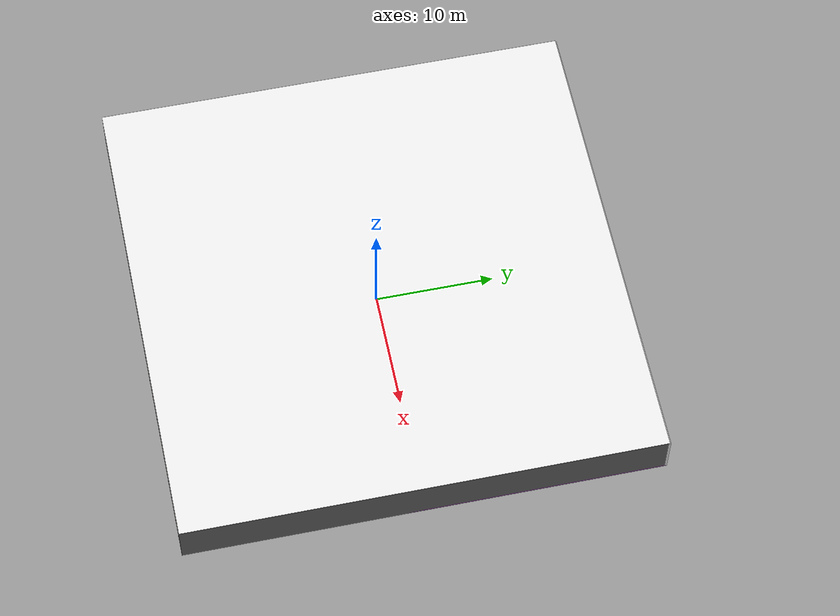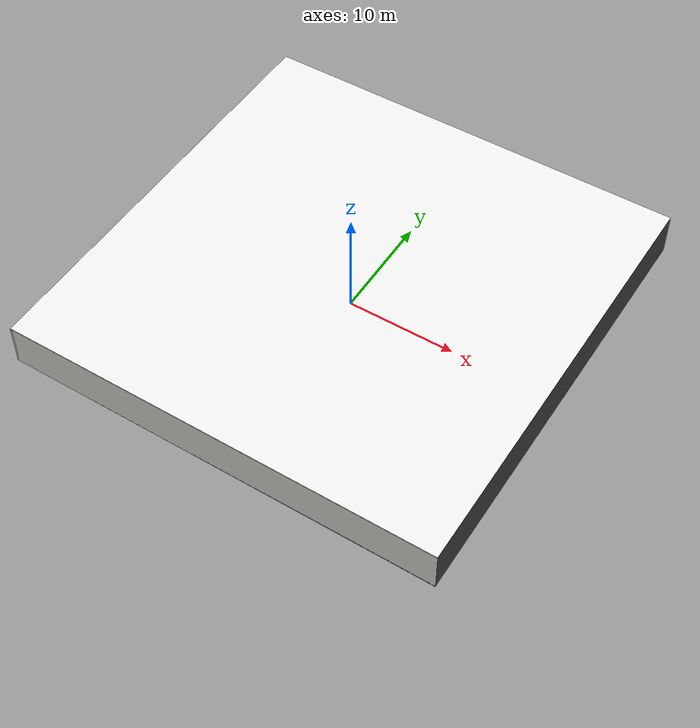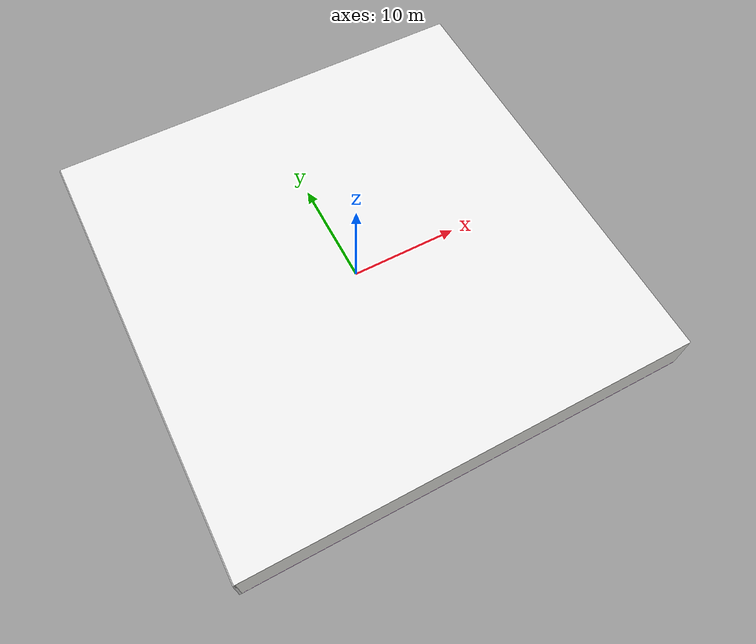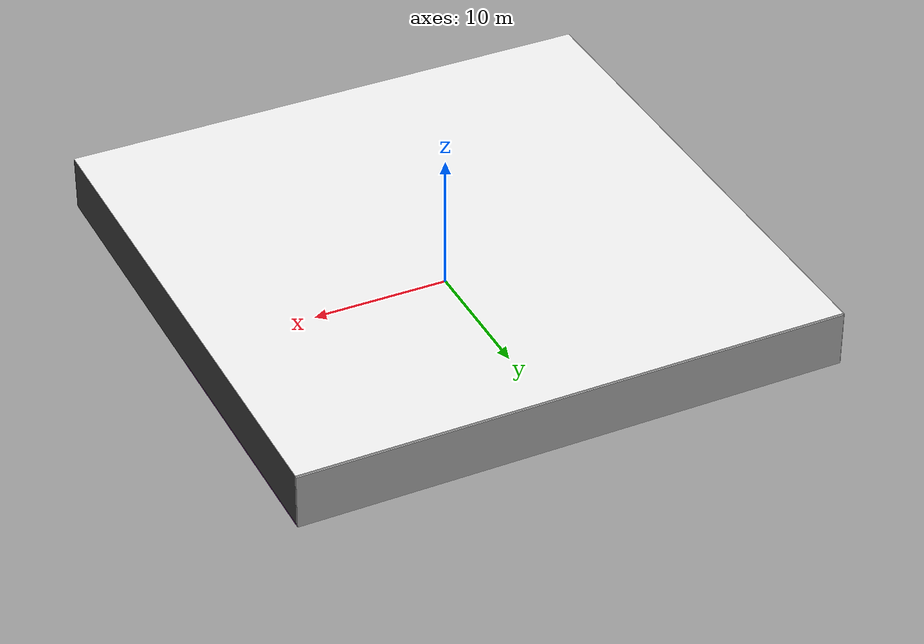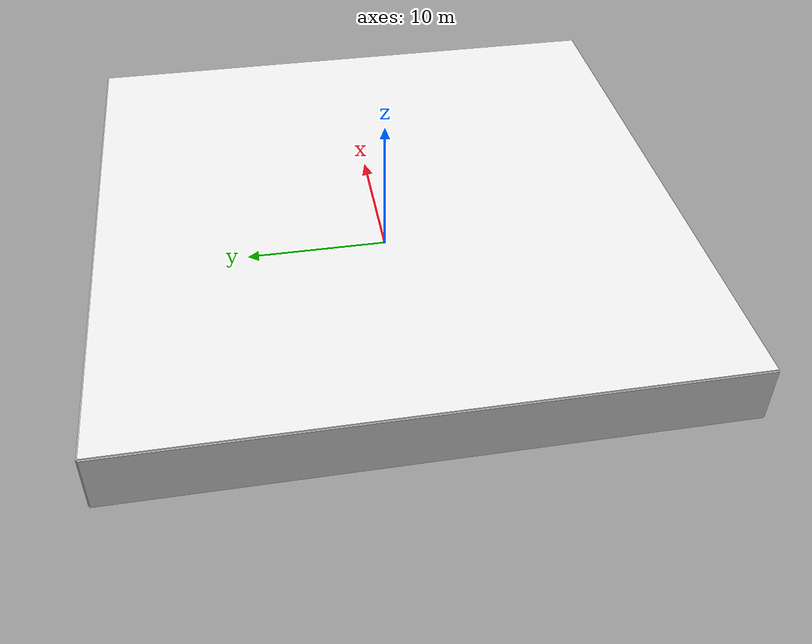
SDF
<sdf version="1.4">
 <world name="default">
  <physics type="ode">
   <max_step_size>0.001</max_step_size>
   <real_time_factor>1</real_time_factor>
   <real_time_update_rate>1000</real_time_update_rate>
   <gravity>0 0 -9.8</gravity>
  </physics>
  <scene><ambient>0.4 0.4 0.4 1</ambient><background>0.7 0.7 0.7 1</background><shadows>1</shadows></scene>
  <model name="Surrounding">
   <static>1</static>
   <link name="Ceiling">
    <collision name="Ceiling_Collision"><geometry><box><size>40 40 0.1</size></box></geometry></collision>
    <visual name="Ceiling_Visual">
     <geometry><box><size>40 40 0.1</size></box></geometry>
     <material>
      <script><uri>file://media/materials/scripts/gazebo.material</uri><name>Gazebo/WhiteGlow</name></script>
     </material>
    </visual>
    <pose>0 0 4.05 0 0 0</pose>
   </link>
   <link name="Wall_South">
    <collision name="Wall_South_Collision">
     <geometry><box><size>40 0 4</size></box></geometry>
     <pose>0 0 2 0 -0 0</pose>
    </collision>
    <visual name="Wall_South_Visual">
     <pose>0 0 2 0 -0 0</pose>
     <geometry><box><size>40 0 4</size></box></geometry>
     <material>
      <script><uri>file://media/materials/scripts/gazebo.material</uri><name>Gazebo/CeilingTiled</name></script>
     </material>
    </visual>
    <velocity_decay><linear>0</linear><angular>0</angular></velocity_decay>
    <pose>0 -20 0 0 -0 0</pose>
   </link>
   <link name="Wall_East">
    <collision name="Wall_21_Collision">
     <geometry><box><size>40 0 4</size></box></geometry>
     <pose>0 0 2 0 -0 0</pose>
    </collision>
    <visual name="Wall_21_Visual">
     <pose>0 0 2 0 -0 0</pose>
     <geometry><box><size>40 0 4</size></box></geometry>
     <material>
      <script><uri>file://media/materials/scripts/gazebo.material</uri><name>Gazebo/DarkGrey</name></script>
     </material>
    </visual>
    <velocity_decay><linear>0</linear><angular>0</angular></velocity_decay>
    <pose>20 0 0 0 -0 1.5708</pose>
   </link>
   <link name="Wall_North">
    <collision name="Wall_22_Collision">
     <geometry><box><size>40 0.2 4</size></box></geometry>
     <pose>0 0 2 0 -0 0</pose>
    </collision>
    <visual name="Wall_22_Visual">
     <pose>0 0 2 0 -0 0</pose>
     <geometry><box><size>40 0.2 4</size></box></geometry>
     <material>
      <script><uri>file://media/materials/scripts/gazebo.material</uri><name>Gazebo/LightOff</name></script>
     </material>
    </visual>
    <velocity_decay><linear>0</linear><angular>0</angular></velocity_decay>
    <pose>0 20 0 0 -0 0</pose>
   </link>
   <link name="Wall_West">
    <collision name="Wall_23_Collision">
     <geometry><box><size>40 0.2 4</size></box></geometry>
     <pose>0 0 2 0 -0 0</pose>
    </collision>
    <visual name="Wall_23_Visual">
     <pose>0 0 2 0 -0 0</pose>
     <geometry><box><size>40 0.2 4</size></box></geometry>
     <material>
      <script><uri>file://media/materials/scripts/gazebo.material</uri><name>Gazebo/Pioneer2Body</name></script>
     </material>
    </visual>
    <velocity_decay><linear>0</linear><angular>0</angular></velocity_decay>
    <pose>-20 0 0 0 0 -1.5708</pose>
   </link>
   <link name="Ground_link">
    <collision name="collision">
     <pose>0 0 .05 0 -0 0</pose>
     <geometry><box><size>40 40 0.1</size></box></geometry>
    </collision>
    <visual name="visual">
     <pose>0 0 .05 0 -0 0</pose>
     <geometry><box><size>40 40 0.1</size></box></geometry>
     <material>
      <script><uri>file://media/materials/scripts/gazebo.material</uri><name>Gazebo/Purple</name></script>
     </material>
    </visual>
   </link>
   <static>1</static>
  </model>
  <spherical_coordinates>
   <surface_model>EARTH_WGS84</surface_model>
   <latitude_deg>0</latitude_deg>
   <longitude_deg>0</longitude_deg>
   <elevation>0</elevation>
   <heading_deg>0</heading_deg>
  </spherical_coordinates>
  <light name="lightball_0" type="diffuse">
   <diffuse>0.8 0.8 0.8 1</diffuse>
   <specular>0.2 0.2 0.2 1</specular>
   <attenuation>
    <range>100</range>
    <constant>0.7</constant>
    <linear>0.01</linear>
    <quadratic>0.001</quadratic>
   </attenuation>
   <direction>-0.5 0.1 -0.9</direction>
   <pose>-0.0728390010791 4.03079209424 3.01176446495 0 0 0</pose>
  </light>
  <light name="lightball_1" type="diffuse">
   <diffuse>0.8 0.8 0.8 1</diffuse>
   <specular>0.2 0.2 0.2 1</specular>
   <attenuation>
    <range>100</range>
    <constant>0.7</constant>
    <linear>0.01</linear>
    <quadratic>0.001</quadratic>
   </attenuation>
   <direction>-0.5 0.1 -0.9</direction>
   <pose>-2.65949309528 16.0484951471 3.80531192896 0 0 0</pose>
  </light>
  <light name="lightball_2" type="diffuse">
   <diffuse>0.8 0.8 0.8 1</diffuse>
   <specular>0.2 0.2 0.2 1</specular>
   <attenuation>
    <range>100</range>
    <constant>0.7</constant>
    <linear>0.01</linear>
    <quadratic>0.001</quadratic>
   </attenuation>
   <direction>-0.5 0.1 -0.9</direction>
   <pose>4.12296359036 -6.80627127556 3.62245246526 0 0 0</pose>
  </light>
  <light name="lightball_3" type="diffuse">
   <diffuse>0.8 0.8 0.8 1</diffuse>
   <specular>0.2 0.2 0.2 1</specular>
   <attenuation>
    <range>100</range>
    <constant>0.7</constant>
    <linear>0.01</linear>
    <quadratic>0.001</quadratic>
   </attenuation>
   <direction>-0.5 0.1 -0.9</direction>
   <pose>-6.74535414608 -14.9375646867 3.5541260201 0 0 0</pose>
  </light>
  <light name="lightball_4" type="diffuse">
   <diffuse>0.8 0.8 0.8 1</diffuse>
   <specular>0.2 0.2 0.2 1</specular>
   <attenuation>
    <range>100</range>
    <constant>0.7</constant>
    <linear>0.01</linear>
    <quadratic>0.001</quadratic>
   </attenuation>
   <direction>-0.5 0.1 -0.9</direction>
   <pose>-4.87693668356 -13.5905343744 0.555469825508 0 0 0</pose>
  </light>
  <light name="lightball_5" type="diffuse">
   <diffuse>0.8 0.8 0.8 1</diffuse>
   <specular>0.2 0.2 0.2 1</specular>
   <attenuation>
    <range>100</range>
    <constant>0.7</constant>
    <linear>0.01</linear>
    <quadratic>0.001</quadratic>
   </attenuation>
   <direction>-0.5 0.1 -0.9</direction>
   <pose>-17.9052917454 -14.2391116782 2.20961750899 0 0 0</pose>
  </light>
  <light name="lightball_6" type="diffuse">
   <diffuse>0.8 0.8 0.8 1</diffuse>
   <specular>0.2 0.2 0.2 1</specular>
   <attenuation>
    <range>100</range>
    <constant>0.7</constant>
    <linear>0.01</linear>
    <quadratic>0.001</quadratic>
   </attenuation>
   <direction>-0.5 0.1 -0.9</direction>
   <pose>-1.92299941602 10.2996992852 3.53634709194 0 0 0</pose>
  </light>
  <light name="lightball_7" type="diffuse">
   <diffuse>0.8 0.8 0.8 1</diffuse>
   <specular>0.2 0.2 0.2 1</specular>
   <attenuation>
    <range>100</range>
    <constant>0.7</constant>
    <linear>0.01</linear>
    <quadratic>0.001</quadratic>
   </attenuation>
   <direction>-0.5 0.1 -0.9</direction>
   <pose>6.38180603838 -7.5609527758 1.25946089238 0 0 0</pose>
  </light>
  <include><uri>model://table</uri><pose>-17.7173008125 9.16021875232 0 0 0 1.31478457458</pose></include>
  <include><uri>model://table</uri><pose>-15.6643053368 1.02209462693 0 0 0 1.38868726124</pose></include>
  <include><uri>model://table</uri><pose>-13.6538499536 15.8198689285 0 0 0 0.0336712577904</pose></include>
  <include><uri>model://table</uri><pose>-11.4262250985 6.57022648048 0 0 0 1.24211671493</pose></include>
  <include><uri>model://table</uri><pose>-9.37145454718 -10.5584758779 0 0 0 3.03336523071</pose></include>
  <include><uri>model://cabinet</uri><pose>-9.40343898693 3.28670108748 0 0 0 2.0025829753</pose></include>
  <include><uri>model://table</uri><pose>-8.10651665901 8.55945028978 0 0 0 1.94630114287</pose></include>
  <include>
   <uri>model://textured_shapes</uri>
   <pose>-4.76028228945 -8.89789976107 0 0 0 2.14350548295</pose>
  </include>
  <include><uri>model://cabinet</uri><pose>-1.67695633151 -2.9927187097 0 0 0 1.00075935257</pose></include>
  <include>
   <uri>model://construction_cone</uri>
   <pose>0.145722951225 9.4463664687 0 0 0 3.07275514891</pose>
  </include>
  <include><uri>model://cabinet</uri><pose>0.869035494877 11.5051935034 0 0 0 2.52728073723</pose></include>
  <include>
   <uri>model://robocup_3Dsim_goal</uri>
   <pose>3.79420262696 14.3229061695 0 0 0 1.55133362047</pose>
  </include>
  <include>
   <uri>model://textured_shapes</uri>
   <pose>5.65608531327 6.75887997472 0 0 0 0.770584171857</pose>
  </include>
  <include>
   <uri>model://textured_shapes</uri>
   <pose>6.14078901119 11.524738135 0 0 0 1.65402796474</pose>
  </include>
  <include>
   <uri>model://construction_cone</uri>
   <pose>8.34347448993 -13.3531434072 0 0 0 2.05464476507</pose>
  </include>
  <include><uri>model://cabinet</uri><pose>8.88997183483 -11.7754179544 0 0 0 0.146248615459</pose></include>
  <include><uri>model://table</uri><pose>9.01337972001 -6.62072628915 0 0 0 3.01319985749</pose></include>
  <include>
   <uri>model://robocup_3Dsim_goal</uri>
   <pose>9.21667194433 -1.73809863183 0 0 0 1.97221803231</pose>
  </include>
  <include><uri>model://cabinet</uri><pose>9.69030317706 0.429107865223 0 0 0 2.6400026895</pose></include>
  <include>
   <uri>model://textured_shapes</uri>
   <pose>16.0466357459 -14.8246231908 0 0 0 2.87990617234</pose>
  </include>
  <include>
   <uri>model://construction_cone</uri>
   <pose>15.7183139168 -10.9133666394 0 0 0 1.9064558693</pose>
  </include>
  <include>
   <uri>model://robocup_3Dsim_goal</uri>
   <pose>14.361907896 7.23631555007 0 0 0 0.939216798785</pose>
  </include>
  <include><uri>model://table</uri><pose>17.5835850908 -8.4066195483 0 0 0 0.681945964592</pose></include>
  <include><uri>model://cabinet</uri><pose>19.6612842489 -4.95316438189 0 0 0 2.07149212828</pose></include>
  <include>
   <uri>model://robocup_3Dsim_goal</uri>
   <pose>19.0590889288 12.238607902 0 0 0 3.05030021294</pose>
  </include>
  <include>
   <uri>model://construction_cone</uri>
   <pose>18.2960061717 14.8442576372 0 0 0 2.28821506013</pose>
  </include>
 </world>
</sdf>

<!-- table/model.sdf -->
<sdf version="1.5">
  <model name="table">
    <static>true</static>
    <link name="link">
      <collision name="surface">
        <pose>0 0 1.0 0 0 0</pose>
        <geometry>
          <box>
            <size>1.5 0.8 0.03</size>
          </box>
        </geometry>
        <surface>
          <friction>
            <ode>
              <mu>0.6</mu>
              <mu2>0.6</mu2>
            </ode>
          </friction>
        </surface>
      </collision>
      <visual name="visual1">
        <pose>0 0 1.0 0 0 0</pose>
        <geometry>
          <box>
            <size>1.5 0.8 0.03</size>
          </box>
        </geometry>
        <material>
          <script>
            <uri>model://media/materials/scripts/gazebo.material</uri>
            <name>Gazebo/Wood</name>
          </script>
        </material>
      </visual>
      <collision name="front_left_leg">
        <pose>0.68 0.38 0.5 0 0 0</pose>
        <geometry>
          <cylinder>
            <radius>0.02</radius>
            <length>1.0</length>
          </cylinder>
        </geometry>
      </collision>
      <visual name="front_left_leg">
        <pose>0.68 0.38 0.5 0 0 0</pose>
        <geometry>
          <cylinder>
            <radius>0.02</radius>
            <length>1.0</length>
          </cylinder>
        </geometry>
        <material>
          <script>
            <uri>model://media/materials/scripts/gazebo.material</uri>
            <name>Gazebo/Grey</name>
          </script>
        </material>
      </visual>
      <collision name="front_right_leg">
        <pose>0.68 -0.38 0.5 0 0 0</pose>
        <geometry>
          <cylinder>
            <radius>0.02</radius>
            <length>1.0</length>
          </cylinder>
        </geometry>
      </collision>
      <visual name="front_right_leg">
        <pose>0.68 -0.38 0.5 0 0 0</pose>
        <geometry>
          <cylinder>
            <radius>0.02</radius>
            <length>1.0</length>
          </cylinder>
        </geometry>
        <material>
          <script>
            <uri>model://media/materials/scripts/gazebo.material</uri>
            <name>Gazebo/Grey</name>
          </script>
        </material>
      </visual>
      <collision name="back_right_leg">
        <pose>-0.68 -0.38 0.5 0 0 0</pose>
        <geometry>
          <cylinder>
            <radius>0.02</radius>
            <length>1.0</length>
          </cylinder>
        </geometry>
      </collision>
      <visual name="back_right_leg">
        <pose>-0.68 -0.38 0.5 0 0 0</pose>
        <geometry>
          <cylinder>
            <radius>0.02</radius>
            <length>1.0</length>
          </cylinder>
        </geometry>
        <material>
          <script>
            <uri>model://media/materials/scripts/gazebo.material</uri>
            <name>Gazebo/Grey</name>
          </script>
        </material>
      </visual>
      <collision name="back_left_leg">
        <pose>-0.68 0.38 0.5 0 0 0</pose>
        <geometry>
          <cylinder>
            <radius>0.02</radius>
            <length>1.0</length>
          </cylinder>
        </geometry>
      </collision>
      <visual name="back_left_leg">
        <pose>-0.68 0.38 0.5 0 0 0</pose>
        <geometry>
          <cylinder>
            <radius>0.02</radius>
            <length>1.0</length>
          </cylinder>
        </geometry>
        <material>
          <script>
            <uri>model://media/materials/scripts/gazebo.material</uri>
            <name>Gazebo/Grey</name>
          </script>
        </material>
      </visual>
    </link>
  </model>
</sdf>

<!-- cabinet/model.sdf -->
<sdf version="1.5">
  <model name="cabinet">
    <static>true</static>
    <link name="cabinet_bottom_plate">
      <inertial>
        <pose>0 0 -1 0 0 0</pose>
        <inertia>
          <ixx>2.050000</ixx>
          <ixy>0</ixy>
          <ixz>0</ixz>
          <iyy>2.050000</iyy>
          <iyz>0</iyz>
          <izz>2.050000</izz>
        </inertia>
        <mass>25.000000</mass>
      </inertial>
      <collision name="cabinet_bottom_plate_geom">
        <pose>0 0 0.010000 0 0 0</pose>
        <geometry>
          <box>
            <size>0.450000 0.450000 0.020000</size>
          </box>
        </geometry>
      </collision>
      <visual name="cabinet_bottom_plate_geom_visual">
        <pose>0 0 0.010000 0 0 0</pose>
        <geometry>
          <box>
            <size>0.450000 0.450000 0.020000</size>
          </box>
        </geometry>
        <material>
          <script>
            <uri>model://media/materials/scripts/gazebo.material</uri>
            <name>Gazebo/Wood</name>
          </script>
        </material>
      </visual>
      <collision name="cabinet_bottom_plate_geom_cabinet_back_plate">
        <pose>0.235000 0 0.510000 0 0 0</pose>
        <geometry>
          <box>
            <size>0.020000 0.450000 1.020000</size>
          </box>
        </geometry>
      </collision>
      <visual name="cabinet_bottom_plate_geom_cabinet_back_plate_visual">
        <pose>0.235000 0 0.510000 0 0 0</pose>
        <geometry>
          <box>
            <size>0.020000 0.450000 1.020000</size>
          </box>
        </geometry>
        <material>
          <script>
            <uri>model://media/materials/scripts/gazebo.material</uri>
            <name>Gazebo/Wood</name>
          </script>
        </material>
      </visual>
      <collision name="cabinet_bottom_plate_geom_cabinet_left_plate">
        <pose>0 0.235000 0.510000 0 0 0</pose>
        <geometry>
          <box>
            <size>0.450000 0.020000 1.020000</size>
          </box>
        </geometry>
      </collision>
      <visual name="cabinet_bottom_plate_geom_cabinet_left_plate_visual">
        <pose>0 0.235000 0.510000 0 0 0</pose>
        <geometry>
          <box>
            <size>0.450000 0.020000 1.020000</size>
          </box>
        </geometry>
        <material>
          <script>
            <uri>model://media/materials/scripts/gazebo.material</uri>
            <name>Gazebo/Wood</name>
          </script>
        </material>
      </visual>
      <collision name="cabinet_bottom_plate_geom_cabinet_middle_plate">
        <pose>0 0 0.510000 0 0 0</pose>
        <geometry>
          <box>
            <size>0.450000 0.450000 0.020000</size>
          </box>
        </geometry>
      </collision>
      <visual name="cabinet_bottom_plate_geom_cabinet_middle_plate_visual">
        <pose>0 0 0.510000 0 0 0</pose>
        <geometry>
          <box>
            <size>0.450000 0.450000 0.020000</size>
          </box>
        </geometry>
        <material>
          <script>
            <uri>model://media/materials/scripts/gazebo.material</uri>
            <name>Gazebo/Wood</name>
          </script>
        </material>
      </visual>
      <collision name="cabinet_bottom_plate_geom_cabinet_right_plate">
        <pose>0 -0.235000 0.510000 0 0 0</pose>
        <geometry>
          <box>
            <size>0.450000 0.020000 1.020000</size>
          </box>
        </geometry>
      </collision>
      <visual name="cabinet_bottom_plate_geom_cabinet_right_plate_visual">
        <pose>0 -0.235000 0.510000 0 0 0</pose>
        <geometry>
          <box>
            <size>0.450000 0.020000 1.020000</size>
          </box>
        </geometry>
        <material>
          <script>
            <uri>model://media/materials/scripts/gazebo.material</uri>
            <name>Gazebo/Wood</name>
          </script>
        </material>
      </visual>
      <collision name="cabinet_bottom_plate_geom_cabinet_top_plate">
        <pose>0 0 1.010000 0 0 0</pose>
        <geometry>
          <box>
            <size>0.450000 0.450000 0.020000</size>
          </box>
        </geometry>
      </collision>
      <visual name="cabinet_bottom_plate_geom_cabinet_top_plate_visual">
        <pose>0 0 1.010000 0 0 0</pose>
        <geometry>
          <box>
            <size>0.450000 0.450000 0.020000</size>
          </box>
        </geometry>
        <material>
          <script>
            <uri>model://media/materials/scripts/gazebo.material</uri>
            <name>Gazebo/Wood</name>
          </script>
        </material>
      </visual>
    </link>
  </model>
</sdf>

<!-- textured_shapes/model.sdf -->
<sdf version="1.6">
  <model name="textured_shapes">
    <pose>0 0 0.5 0 0 0</pose>
    <link name="box">
      <pose>0 -1.5 0 0 0 0</pose>
      <collision name="collision">
        <geometry>
          <box>
            <size>1 1 1</size>
          </box>
        </geometry>
      </collision>
      <visual name="visual">
        <geometry>
          <box>
            <size>1 1 1</size>
          </box>
        </geometry>
        <material>
          <script>
            <uri>model://../model_source/models/textured_shapes/materials/scripts</uri>
            <uri>model://../model_source/models/textured_shapes/materials/textures</uri>
            <name>TexturedShape/Squares</name>
          </script>
        </material>
      </visual>
    </link>
    <link name="sphere">
      <collision name="collision">
        <geometry>
          <sphere>
            <radius>0.5</radius>
          </sphere>
        </geometry>
      </collision>
      <visual name="visual">
        <geometry>
          <sphere>
            <radius>0.5</radius>
          </sphere>
        </geometry>
        <material>
          <script>
            <uri>model://../model_source/models/textured_shapes/materials/scripts</uri>
            <uri>model://../model_source/models/textured_shapes/materials/textures</uri>
            <name>TexturedShape/Squares</name>
          </script>
        </material>
      </visual>
    </link>
    <link name="cylinder">
      <pose>0 1.5 0 0 0 0</pose>
      <collision name="collision">
        <geometry>
          <cylinder>
            <radius>0.5</radius>
            <length>1</length>
          </cylinder>
        </geometry>
      </collision>
      <visual name="visual">
        <geometry>
          <cylinder>
            <radius>0.5</radius>
            <length>1</length>
          </cylinder>
        </geometry>
        <material>
          <script>
            <uri>model://../model_source/models/textured_shapes/materials/scripts</uri>
            <uri>model://../model_source/models/textured_shapes/materials/textures</uri>
            <name>TexturedShape/Squares</name>
          </script>
        </material>
      </visual>
    </link>
  </model>
</sdf>

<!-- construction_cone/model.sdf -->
<sdf version="1.5">
  <model name="Construction Cone">
    <link name="link">
      <collision name="collision">
        <geometry>
          <mesh>
            <scale>10 10 10</scale>
            <uri>file://isr-testbed/construction_cone/meshes/construction_cone.dae</uri>
          </mesh>
        </geometry>
      </collision>
      <visual name="visual">
        <geometry>
          <mesh>
            <scale>10 10 10</scale>
            <uri>file://isr-testbed/construction_cone/meshes/construction_cone.dae</uri>
          </mesh>
        </geometry>
      </visual>
    </link>
  </model>
</sdf>

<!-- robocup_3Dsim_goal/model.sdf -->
<sdf version="1.5">
  <model name="robocup_3d_goal">
    <static>true</static>
    <link name="left_post">
      <pose>0 1.05 0.45 0 0 0</pose>
      <collision name="collision">
        <geometry>
          <cylinder>
            <radius>0.05</radius>
            <length>0.9</length>
          </cylinder>
        </geometry>
      </collision>
      <visual name="visual">
        <geometry>
          <cylinder>
            <radius>0.05</radius>
            <length>0.9</length>
          </cylinder>
        </geometry>
        <material>
          <script>
            <uri>file://media/materials/scripts/gazebo.material</uri>
            <name>Gazebo/ZincYellow</name>
          </script>
        </material>
      </visual>
    </link>
    <link name="left_support_horiz_lower">
      <pose>0.30 1.05 0.01 0 0 0</pose>
      <collision name="collision">
        <geometry>
          <box>
            <size>0.50 0.02 0.02</size>
          </box>
        </geometry>
      </collision>
      <visual name="visual">
        <geometry>
          <box>
            <size>0.50 0.02 0.02</size>
          </box>
        </geometry>
        <material>
          <script>
            <uri>file://media/materials/scripts/gazebo.material</uri>
            <name>Gazebo/White</name>
          </script>
        </material>
      </visual>
    </link>
    <link name="left_support_horiz_upper">
      <pose>0.30 1.05 0.79 0 0 0</pose>
      <collision name="collision">
        <geometry>
          <box>
            <size>0.50 0.02 0.02</size>
          </box>
        </geometry>
      </collision>
      <visual name="visual">
        <geometry>
          <box>
            <size>0.50 0.02 0.02</size>
          </box>
        </geometry>
        <material>
          <script>
            <uri>file://media/materials/scripts/gazebo.material</uri>
            <name>Gazebo/White</name>
          </script>
        </material>
      </visual>
    </link>
    <link name="left_support_vertical">
      <pose>0.56 1.05 0.4 0 1.5708 0</pose>
      <collision name="collision">
        <geometry>
          <box>
            <size>0.80 0.02 0.02</size>
          </box>
        </geometry>
      </collision>
      <visual name="visual">
        <geometry>
          <box>
            <size>0.80 0.02 0.02</size>
          </box>
        </geometry>
        <material>
          <script>
            <uri>file://media/materials/scripts/gazebo.material</uri>
            <name>Gazebo/White</name>
          </script>
        </material>
      </visual>
    </link>
    <link name="right_support_horiz_lower">
      <pose>0.30 -1.05 0.01 0 0 0</pose>
      <collision name="collision">
        <geometry>
          <box>
            <size>0.50 0.02 0.02</size>
          </box>
        </geometry>
      </collision>
      <visual name="visual">
        <geometry>
          <box>
            <size>0.50 0.02 0.02</size>
          </box>
        </geometry>
        <material>
          <script>
            <uri>file://media/materials/scripts/gazebo.material</uri>
            <name>Gazebo/White</name>
          </script>
        </material>
      </visual>
    </link>
    <link name="right_support_horiz_upper">
      <pose>0.30 -1.05 0.79 0 0 0</pose>
      <collision name="collision">
        <geometry>
          <box>
            <size>0.50 0.02 0.02</size>
          </box>
        </geometry>
      </collision>
      <visual name="visual">
        <geometry>
          <box>
            <size>0.50 0.02 0.02</size>
          </box>
        </geometry>
        <material>
          <script>
            <uri>file://media/materials/scripts/gazebo.material</uri>
            <name>Gazebo/White</name>
          </script>
        </material>
      </visual>
    </link>
    <link name="right_support_vertical">
      <pose>0.56 -1.05 0.4 0 1.5708 0</pose>
      <collision name="collision">
        <geometry>
          <box>
            <size>0.80 0.02 0.02</size>
          </box>
        </geometry>
      </collision>
      <visual name="visual">
        <geometry>
          <box>
            <size>0.80 0.02 0.02</size>
          </box>
        </geometry>
        <material>
          <script>
            <uri>file://media/materials/scripts/gazebo.material</uri>
            <name>Gazebo/White</name>
          </script>
        </material>
      </visual>
    </link>
    <link name="center_support_horiz_lower">
      <pose>0.56 0 0.01 0 1.5708 0</pose>
      <collision name="collision">
        <geometry>
          <box>
            <size>0.02 2.08 0.02</size>
          </box>
        </geometry>
      </collision>
      <visual name="visual">
        <geometry>
          <box>
            <size>0.02 2.08 0.02</size>
          </box>
        </geometry>
        <material>
          <script>
            <uri>file://media/materials/scripts/gazebo.material</uri>
            <name>Gazebo/White</name>
          </script>
        </material>
      </visual>
    </link>
    <link name="center_support_horiz_upper">
      <pose>0.56 0 0.79 0 1.5708 0</pose>
      <collision name="collision">
        <geometry>
          <box>
            <size>0.02 2.08 0.02</size>
          </box>
        </geometry>
      </collision>
      <visual name="visual">
        <geometry>
          <box>
            <size>0.02 2.08 0.02</size>
          </box>
        </geometry>
        <material>
          <script>
            <uri>file://media/materials/scripts/gazebo.material</uri>
            <name>Gazebo/White</name>
          </script>
        </material>
      </visual>
    </link>
    <link name="right_post">
      <pose>0 -1.05 0.45 0 0 0</pose>
      <collision name="collision">
        <geometry>
          <cylinder>
            <radius>0.05</radius>
            <length>0.9</length>
          </cylinder>
        </geometry>
      </collision>
      <visual name="visual">
        <geometry>
          <cylinder>
            <radius>0.05</radius>
            <length>0.9</length>
          </cylinder>
        </geometry>
        <material>
          <script>
            <uri>file://media/materials/scripts/gazebo.material</uri>
            <name>Gazebo/ZincYellow</name>
          </script>
        </material>
      </visual>
    </link>
    <link name="crossbar">
      <pose>0 0 0.85 1.57 1.57 0</pose>
      <collision name="collision">
        <geometry>
          <cylinder>
            <radius>0.05</radius>
            <length>2.0</length>
          </cylinder>
        </geometry>
      </collision>
      <visual name="visual">
        <geometry>
          <cylinder>
            <radius>0.05</radius>
            <length>2.0</length>
          </cylinder>
        </geometry>
        <material>
          <script>
            <uri>file://media/materials/scripts/gazebo.material</uri>
            <name>Gazebo/ZincYellow</name>
          </script>
        </material>
      </visual>
    </link>
    <link name="center_net">
      <pose>0.56 0 0.40 0 0 0</pose>
      <collision name="collision">
        <geometry>
          <box>
            <size>0.01 2.1 0.80</size>
          </box>
        </geometry>
      </collision>
      <visual name="visual">
        <geometry>
          <box>
            <size>0.01 2.1 0.80</size>
          </box>
        </geometry>
        <material>
          <script>
            <uri>model://../model_source/models/robocup09_spl_field/materials/scripts/</uri>
            <uri>model://../model_source/models/robocup09_spl_field/materials/textures/</uri>
            <name>RoboCup/Net</name>
          </script>
        </material>
      </visual>
    </link>
    <link name="left_net">
      <pose>0.30 1.05 0.40 0 0 0</pose>
      <collision name="collision">
        <geometry>
          <box>
            <size>0.50 0.01 0.76</size>
          </box>
        </geometry>
      </collision>
      <visual name="visual">
        <geometry>
          <box>
            <size>0.50 0.01 0.76</size>
          </box>
        </geometry>
        <material>
          <script>
            <uri>model://../model_source/models/robocup09_spl_field/materials/scripts/</uri>
            <uri>model://../model_source/models/robocup09_spl_field/materials/textures/</uri>
            <name>RoboCup/Net</name>
          </script>
        </material>
      </visual>
    </link>
    <link name="right_net">
      <pose>0.30 -1.05 0.40 0 0 0</pose>
      <collision name="collision">
        <geometry>
          <box>
            <size>0.50 0.01 0.76</size>
          </box>
        </geometry>
      </collision>
      <visual name="visual">
        <geometry>
          <box>
            <size>0.50 0.01 0.76</size>
          </box>
        </geometry>
        <material>
          <script>
            <uri>model://../model_source/models/robocup09_spl_field/materials/scripts/</uri>
            <uri>model://../model_source/models/robocup09_spl_field/materials/textures/</uri>
            <name>RoboCup/Net</name>
          </script>
        </material>
      </visual>
    </link>
  </model>
</sdf>
